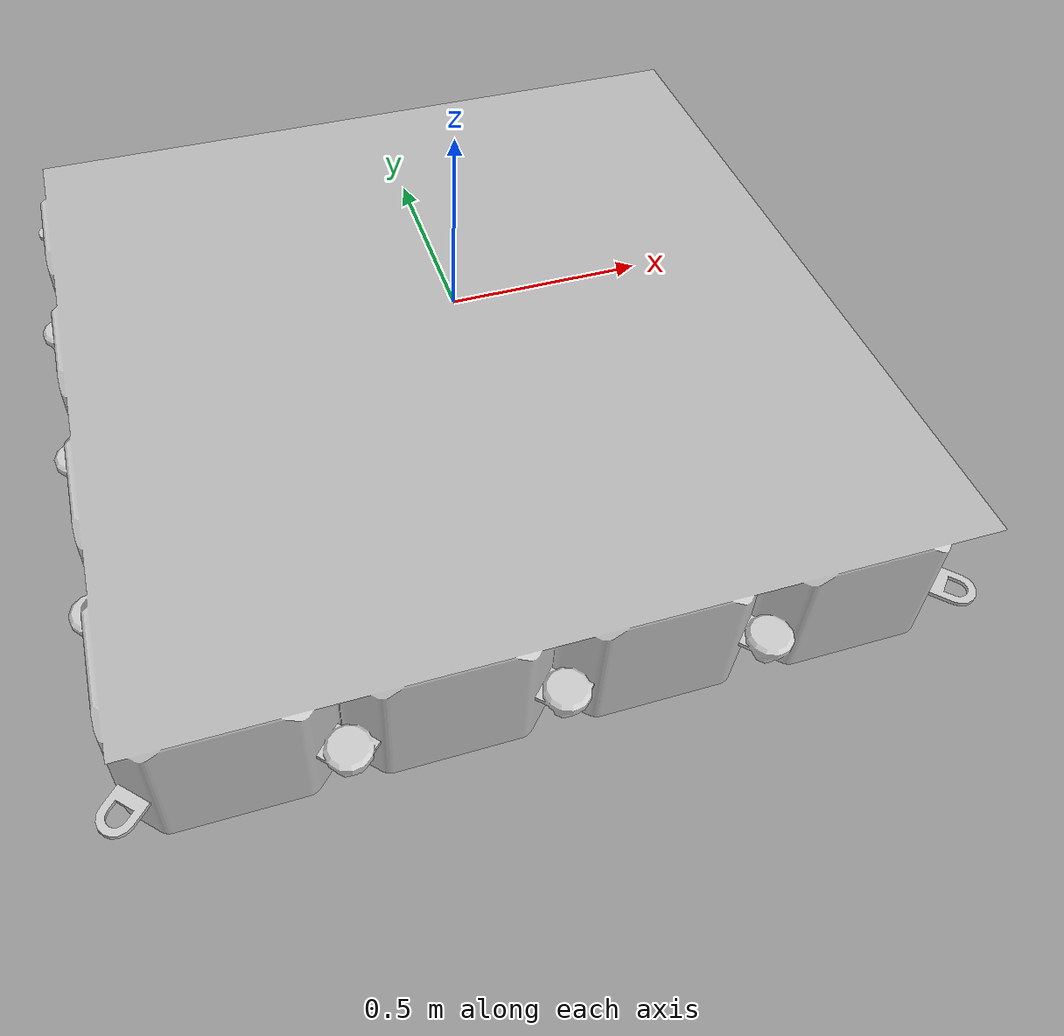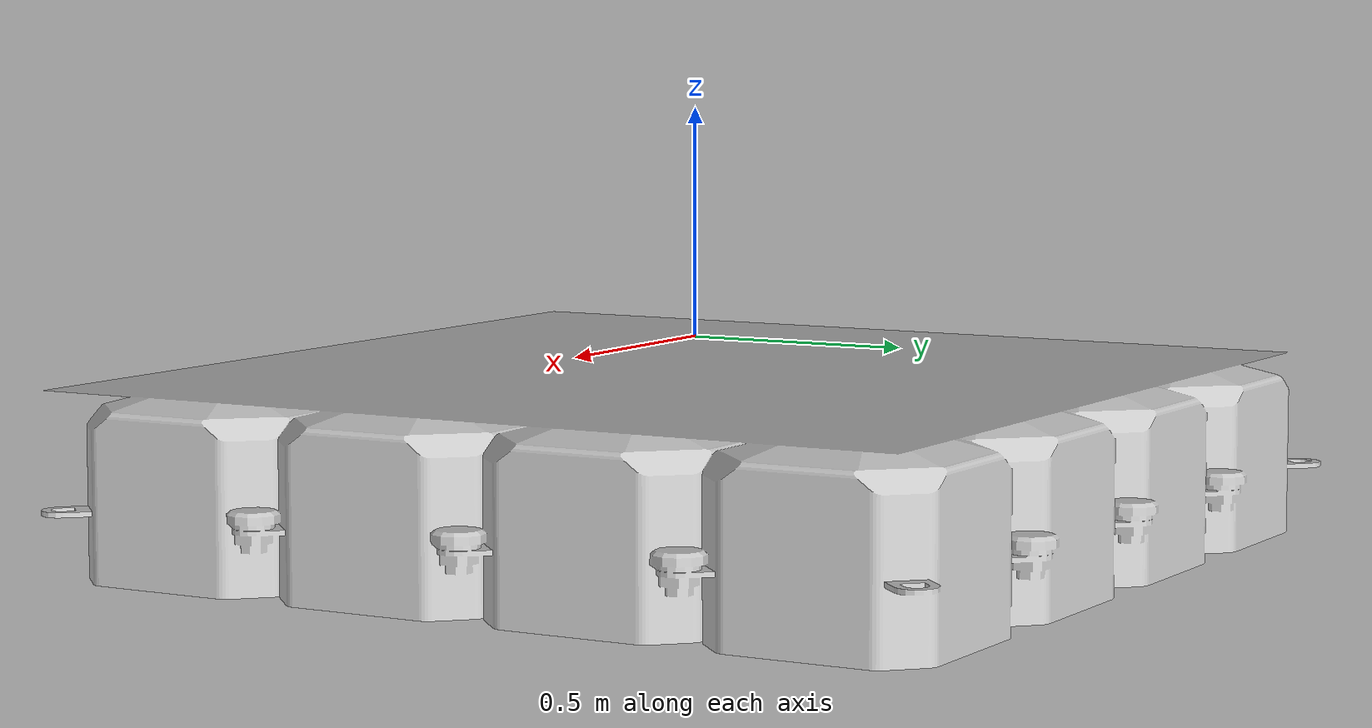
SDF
<?xml version="1.0"?>
<sdf version="1.6">
  <model name="drone_replenishment">
    <pose>0 0 -0.0762 0 0 0</pose>
    <link name="base_link">
      <inertial>
        <pose>0 0 -0.2 0 0 0</pose>
        <!-- 6.35 Kg. (dock block) x 9 (num blocks) + 10 Kg (estimated). -->
        <mass>67.15</mass>
        <inertia>
          <ixx>13.486</ixx>
          <ixy>0</ixy>
          <ixz>0</ixz>
          <iyy>13.486</iyy>
          <iyz>0</iyz>
          <izz>25.1813</izz>
        </inertia>
      </inertial>
      <visual name="base">
        <geometry>
           <mesh>
            <uri>file://drone_replenishment/mesh/replenish.dae</uri>
          </mesh>
        </geometry>
      </visual>
      <collision name="collision_base">
        <pose>0 0 -0.2 0 0 0</pose>
        <geometry>
           <box>
            <size>1.5 1.5 0.4</size>
          </box>
        </geometry>
      </collision>
    </link>
    <plugin
      filename="gz-sim-odometry-publisher-system"
      name="gz::sim::systems::OdometryPublisher">
      <dimensions>3</dimensions>
      <odom_publish_frequency>10.0000</odom_publish_frequency>
      <odom_frame>NBPARK_GZ</odom_frame>
      <robot_base_frame>robotx_gt/drone_replenishment</robot_base_frame>
      <odom_topic>/robotx/drone_replenishment/pose</odom_topic>
      <gaussian_noise>0.0</gaussian_noise>
      <name>drone_replenishment/pose</name>
    </plugin>
  </model>
</sdf>
